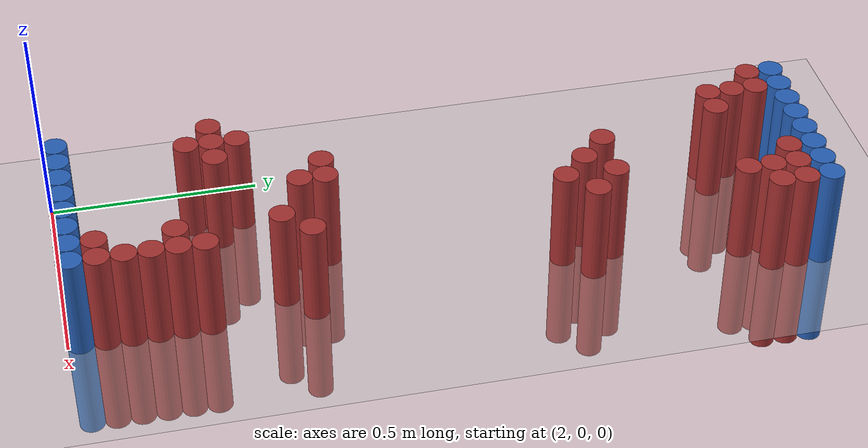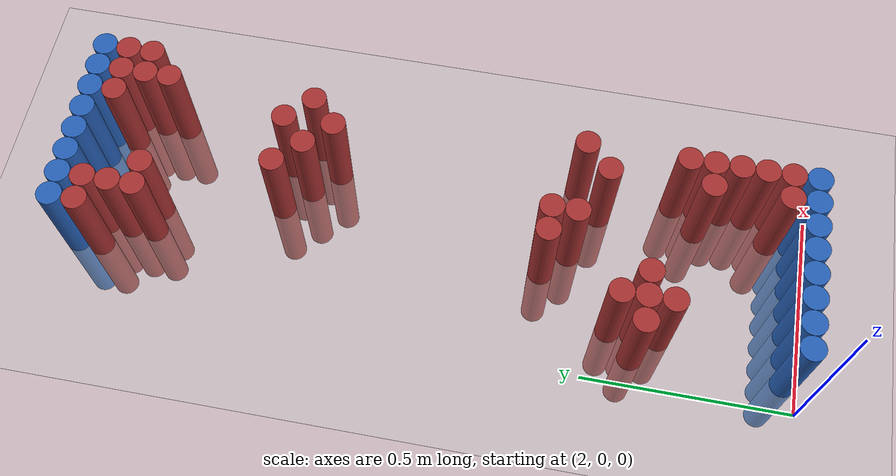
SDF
<sdf version="1.6">
 <world name="default">
  <model name="ground_plane">
   <static>1</static>
   <link name="link">
    <collision name="collision">
     <geometry><plane><normal>0 0 1</normal><size>100 100</size></plane></geometry>
     <surface><friction><ode><mu>100</mu><mu2>50</mu2></ode></friction></surface>
    </collision>
    <visual name="visual">
     <cast_shadows>0</cast_shadows>
     <geometry><plane><normal>0 0 1</normal><size>100 100</size></plane></geometry>
     <material>
      <script><uri>file://media/materials/scripts/gazebo.material</uri><name>Gazebo/Grey</name></script>
     </material>
    </visual>
   </link>
  </model>
  <model name="unit_cylinder_96">
   <static>1</static>
   <pose>2.130000 1.770000 0.000000 0.000000 0.000000 0.000000</pose>
   <link name="link">
    <inertial>
     <mass>1</mass>
     <inertia><ixx>0.145833</ixx><ixy>0</ixy><ixz>0</ixz><iyy>0.145833</iyy><iyz>0</iyz><izz>0.125</izz></inertia>
    </inertial>
    <collision name="collision">
     <geometry><cylinder><radius>0.030000</radius><length>0.5</length></cylinder></geometry>
    </collision>
    <visual name="visual">
     <geometry><cylinder><radius>0.030000</radius><length>0.5</length></cylinder></geometry>
     <material>
      <ambient>0.152000 0.379000 0.720000 1</ambient>
      <diffuse>0.152000 0.379000 0.720000 1</diffuse>
     </material>
     <material>
      <script><name>Gazebo/Grey</name><uri>file://media/materials/scripts/gazebo.material</uri></script>
     </material>
    </visual>
   </link>
  </model>
  <model name="unit_cylinder_97">
   <static>1</static>
   <pose>2.190000 1.770000 0.000000 0.000000 0.000000 0.000000</pose>
   <link name="link">
    <inertial>
     <mass>1</mass>
     <inertia><ixx>0.145833</ixx><ixy>0</ixy><ixz>0</ixz><iyy>0.145833</iyy><iyz>0</iyz><izz>0.125</izz></inertia>
    </inertial>
    <collision name="collision">
     <geometry><cylinder><radius>0.030000</radius><length>0.5</length></cylinder></geometry>
    </collision>
    <visual name="visual">
     <geometry><cylinder><radius>0.030000</radius><length>0.5</length></cylinder></geometry>
     <material>
      <ambient>0.152000 0.379000 0.720000 1</ambient>
      <diffuse>0.152000 0.379000 0.720000 1</diffuse>
     </material>
     <material>
      <script><name>Gazebo/Grey</name><uri>file://media/materials/scripts/gazebo.material</uri></script>
     </material>
    </visual>
   </link>
  </model>
  <model name="unit_cylinder_98">
   <static>1</static>
   <pose>2.250000 1.770000 0.000000 0.000000 0.000000 0.000000</pose>
   <link name="link">
    <inertial>
     <mass>1</mass>
     <inertia><ixx>0.145833</ixx><ixy>0</ixy><ixz>0</ixz><iyy>0.145833</iyy><iyz>0</iyz><izz>0.125</izz></inertia>
    </inertial>
    <collision name="collision">
     <geometry><cylinder><radius>0.030000</radius><length>0.5</length></cylinder></geometry>
    </collision>
    <visual name="visual">
     <geometry><cylinder><radius>0.030000</radius><length>0.5</length></cylinder></geometry>
     <material>
      <ambient>0.152000 0.379000 0.720000 1</ambient>
      <diffuse>0.152000 0.379000 0.720000 1</diffuse>
     </material>
     <material>
      <script><name>Gazebo/Grey</name><uri>file://media/materials/scripts/gazebo.material</uri></script>
     </material>
    </visual>
   </link>
  </model>
  <model name="unit_cylinder_99">
   <static>1</static>
   <pose>2.310000 1.770000 0.000000 0.000000 0.000000 0.000000</pose>
   <link name="link">
    <inertial>
     <mass>1</mass>
     <inertia><ixx>0.145833</ixx><ixy>0</ixy><ixz>0</ixz><iyy>0.145833</iyy><iyz>0</iyz><izz>0.125</izz></inertia>
    </inertial>
    <collision name="collision">
     <geometry><cylinder><radius>0.030000</radius><length>0.5</length></cylinder></geometry>
    </collision>
    <visual name="visual">
     <geometry><cylinder><radius>0.030000</radius><length>0.5</length></cylinder></geometry>
     <material>
      <ambient>0.152000 0.379000 0.720000 1</ambient>
      <diffuse>0.152000 0.379000 0.720000 1</diffuse>
     </material>
     <material>
      <script><name>Gazebo/Grey</name><uri>file://media/materials/scripts/gazebo.material</uri></script>
     </material>
    </visual>
   </link>
  </model>
  <model name="unit_cylinder_100">
   <static>1</static>
   <pose>2.370000 1.770000 0.000000 0.000000 0.000000 0.000000</pose>
   <link name="link">
    <inertial>
     <mass>1</mass>
     <inertia><ixx>0.145833</ixx><ixy>0</ixy><ixz>0</ixz><iyy>0.145833</iyy><iyz>0</iyz><izz>0.125</izz></inertia>
    </inertial>
    <collision name="collision">
     <geometry><cylinder><radius>0.030000</radius><length>0.5</length></cylinder></geometry>
    </collision>
    <visual name="visual">
     <geometry><cylinder><radius>0.030000</radius><length>0.5</length></cylinder></geometry>
     <material>
      <ambient>0.152000 0.379000 0.720000 1</ambient>
      <diffuse>0.152000 0.379000 0.720000 1</diffuse>
     </material>
     <material>
      <script><name>Gazebo/Grey</name><uri>file://media/materials/scripts/gazebo.material</uri></script>
     </material>
    </visual>
   </link>
  </model>
  <model name="unit_cylinder_101">
   <static>1</static>
   <pose>2.430000 1.770000 0.000000 0.000000 0.000000 0.000000</pose>
   <link name="link">
    <inertial>
     <mass>1</mass>
     <inertia><ixx>0.145833</ixx><ixy>0</ixy><ixz>0</ixz><iyy>0.145833</iyy><iyz>0</iyz><izz>0.125</izz></inertia>
    </inertial>
    <collision name="collision">
     <geometry><cylinder><radius>0.030000</radius><length>0.5</length></cylinder></geometry>
    </collision>
    <visual name="visual">
     <geometry><cylinder><radius>0.030000</radius><length>0.5</length></cylinder></geometry>
     <material>
      <ambient>0.152000 0.379000 0.720000 1</ambient>
      <diffuse>0.152000 0.379000 0.720000 1</diffuse>
     </material>
     <material>
      <script><name>Gazebo/Grey</name><uri>file://media/materials/scripts/gazebo.material</uri></script>
     </material>
    </visual>
   </link>
  </model>
  <model name="unit_cylinder_102">
   <static>1</static>
   <pose>2.490000 1.770000 0.000000 0.000000 0.000000 0.000000</pose>
   <link name="link">
    <inertial>
     <mass>1</mass>
     <inertia><ixx>0.145833</ixx><ixy>0</ixy><ixz>0</ixz><iyy>0.145833</iyy><iyz>0</iyz><izz>0.125</izz></inertia>
    </inertial>
    <collision name="collision">
     <geometry><cylinder><radius>0.030000</radius><length>0.5</length></cylinder></geometry>
    </collision>
    <visual name="visual">
     <geometry><cylinder><radius>0.030000</radius><length>0.5</length></cylinder></geometry>
     <material>
      <ambient>0.152000 0.379000 0.720000 1</ambient>
      <diffuse>0.152000 0.379000 0.720000 1</diffuse>
     </material>
     <material>
      <script><name>Gazebo/Grey</name><uri>file://media/materials/scripts/gazebo.material</uri></script>
     </material>
    </visual>
   </link>
  </model>
  <model name="unit_cylinder_103">
   <static>1</static>
   <pose>2.550000 1.770000 0.000000 0.000000 0.000000 0.000000</pose>
   <link name="link">
    <inertial>
     <mass>1</mass>
     <inertia><ixx>0.145833</ixx><ixy>0</ixy><ixz>0</ixz><iyy>0.145833</iyy><iyz>0</iyz><izz>0.125</izz></inertia>
    </inertial>
    <collision name="collision">
     <geometry><cylinder><radius>0.030000</radius><length>0.5</length></cylinder></geometry>
    </collision>
    <visual name="visual">
     <geometry><cylinder><radius>0.030000</radius><length>0.5</length></cylinder></geometry>
     <material>
      <ambient>0.152000 0.379000 0.720000 1</ambient>
      <diffuse>0.152000 0.379000 0.720000 1</diffuse>
     </material>
     <material>
      <script><name>Gazebo/Grey</name><uri>file://media/materials/scripts/gazebo.material</uri></script>
     </material>
    </visual>
   </link>
  </model>
  <model name="unit_cylinder_126">
   <static>1</static>
   <pose>2.130000 1.710000 0.000000 0.000000 0.000000 0.000000</pose>
   <link name="link">
    <inertial>
     <mass>1</mass>
     <inertia><ixx>0.145833</ixx><ixy>0</ixy><ixz>0</ixz><iyy>0.145833</iyy><iyz>0</iyz><izz>0.125</izz></inertia>
    </inertial>
    <collision name="collision">
     <geometry><cylinder><radius>0.030000</radius><length>0.5</length></cylinder></geometry>
    </collision>
    <visual name="visual">
     <geometry><cylinder><radius>0.030000</radius><length>0.5</length></cylinder></geometry>
     <material>
      <ambient>0.648000 0.192000 0.192000 1</ambient>
      <diffuse>0.648000 0.192000 0.192000 1</diffuse>
     </material>
     <material>
      <script><name>Gazebo/Grey</name><uri>file://media/materials/scripts/gazebo.material</uri></script>
     </material>
    </visual>
   </link>
  </model>
  <model name="unit_cylinder_127">
   <static>1</static>
   <pose>2.190000 1.710000 0.000000 0.000000 0.000000 0.000000</pose>
   <link name="link">
    <inertial>
     <mass>1</mass>
     <inertia><ixx>0.145833</ixx><ixy>0</ixy><ixz>0</ixz><iyy>0.145833</iyy><iyz>0</iyz><izz>0.125</izz></inertia>
    </inertial>
    <collision name="collision">
     <geometry><cylinder><radius>0.030000</radius><length>0.5</length></cylinder></geometry>
    </collision>
    <visual name="visual">
     <geometry><cylinder><radius>0.030000</radius><length>0.5</length></cylinder></geometry>
     <material>
      <ambient>0.648000 0.192000 0.192000 1</ambient>
      <diffuse>0.648000 0.192000 0.192000 1</diffuse>
     </material>
     <material>
      <script><name>Gazebo/Grey</name><uri>file://media/materials/scripts/gazebo.material</uri></script>
     </material>
    </visual>
   </link>
  </model>
  <model name="unit_cylinder_128">
   <static>1</static>
   <pose>2.430000 1.710000 0.000000 0.000000 0.000000 0.000000</pose>
   <link name="link">
    <inertial>
     <mass>1</mass>
     <inertia><ixx>0.145833</ixx><ixy>0</ixy><ixz>0</ixz><iyy>0.145833</iyy><iyz>0</iyz><izz>0.125</izz></inertia>
    </inertial>
    <collision name="collision">
     <geometry><cylinder><radius>0.030000</radius><length>0.5</length></cylinder></geometry>
    </collision>
    <visual name="visual">
     <geometry><cylinder><radius>0.030000</radius><length>0.5</length></cylinder></geometry>
     <material>
      <ambient>0.648000 0.192000 0.192000 1</ambient>
      <diffuse>0.648000 0.192000 0.192000 1</diffuse>
     </material>
     <material>
      <script><name>Gazebo/Grey</name><uri>file://media/materials/scripts/gazebo.material</uri></script>
     </material>
    </visual>
   </link>
  </model>
  <model name="unit_cylinder_129">
   <static>1</static>
   <pose>2.490000 1.710000 0.000000 0.000000 0.000000 0.000000</pose>
   <link name="link">
    <inertial>
     <mass>1</mass>
     <inertia><ixx>0.145833</ixx><ixy>0</ixy><ixz>0</ixz><iyy>0.145833</iyy><iyz>0</iyz><izz>0.125</izz></inertia>
    </inertial>
    <collision name="collision">
     <geometry><cylinder><radius>0.030000</radius><length>0.5</length></cylinder></geometry>
    </collision>
    <visual name="visual">
     <geometry><cylinder><radius>0.030000</radius><length>0.5</length></cylinder></geometry>
     <material>
      <ambient>0.648000 0.192000 0.192000 1</ambient>
      <diffuse>0.648000 0.192000 0.192000 1</diffuse>
     </material>
     <material>
      <script><name>Gazebo/Grey</name><uri>file://media/materials/scripts/gazebo.material</uri></script>
     </material>
    </visual>
   </link>
  </model>
  <model name="unit_cylinder_130">
   <static>1</static>
   <pose>2.550000 1.710000 0.000000 0.000000 0.000000 0.000000</pose>
   <link name="link">
    <inertial>
     <mass>1</mass>
     <inertia><ixx>0.145833</ixx><ixy>0</ixy><ixz>0</ixz><iyy>0.145833</iyy><iyz>0</iyz><izz>0.125</izz></inertia>
    </inertial>
    <collision name="collision">
     <geometry><cylinder><radius>0.030000</radius><length>0.5</length></cylinder></geometry>
    </collision>
    <visual name="visual">
     <geometry><cylinder><radius>0.030000</radius><length>0.5</length></cylinder></geometry>
     <material>
      <ambient>0.648000 0.192000 0.192000 1</ambient>
      <diffuse>0.648000 0.192000 0.192000 1</diffuse>
     </material>
     <material>
      <script><name>Gazebo/Grey</name><uri>file://media/materials/scripts/gazebo.material</uri></script>
     </material>
    </visual>
   </link>
  </model>
  <model name="unit_cylinder_144">
   <static>1</static>
   <pose>2.190000 1.650000 0.000000 0.000000 0.000000 0.000000</pose>
   <link name="link">
    <inertial>
     <mass>1</mass>
     <inertia><ixx>0.145833</ixx><ixy>0</ixy><ixz>0</ixz><iyy>0.145833</iyy><iyz>0</iyz><izz>0.125</izz></inertia>
    </inertial>
    <collision name="collision">
     <geometry><cylinder><radius>0.030000</radius><length>0.5</length></cylinder></geometry>
    </collision>
    <visual name="visual">
     <geometry><cylinder><radius>0.030000</radius><length>0.5</length></cylinder></geometry>
     <material>
      <ambient>0.648000 0.192000 0.192000 1</ambient>
      <diffuse>0.648000 0.192000 0.192000 1</diffuse>
     </material>
     <material>
      <script><name>Gazebo/Grey</name><uri>file://media/materials/scripts/gazebo.material</uri></script>
     </material>
    </visual>
   </link>
  </model>
  <model name="unit_cylinder_145">
   <static>1</static>
   <pose>2.490000 1.650000 0.000000 0.000000 0.000000 0.000000</pose>
   <link name="link">
    <inertial>
     <mass>1</mass>
     <inertia><ixx>0.145833</ixx><ixy>0</ixy><ixz>0</ixz><iyy>0.145833</iyy><iyz>0</iyz><izz>0.125</izz></inertia>
    </inertial>
    <collision name="collision">
     <geometry><cylinder><radius>0.030000</radius><length>0.5</length></cylinder></geometry>
    </collision>
    <visual name="visual">
     <geometry><cylinder><radius>0.030000</radius><length>0.5</length></cylinder></geometry>
     <material>
      <ambient>0.648000 0.192000 0.192000 1</ambient>
      <diffuse>0.648000 0.192000 0.192000 1</diffuse>
     </material>
     <material>
      <script><name>Gazebo/Grey</name><uri>file://media/materials/scripts/gazebo.material</uri></script>
     </material>
    </visual>
   </link>
  </model>
  <model name="unit_cylinder_146">
   <static>1</static>
   <pose>2.550000 1.650000 0.000000 0.000000 0.000000 0.000000</pose>
   <link name="link">
    <inertial>
     <mass>1</mass>
     <inertia><ixx>0.145833</ixx><ixy>0</ixy><ixz>0</ixz><iyy>0.145833</iyy><iyz>0</iyz><izz>0.125</izz></inertia>
    </inertial>
    <collision name="collision">
     <geometry><cylinder><radius>0.030000</radius><length>0.5</length></cylinder></geometry>
    </collision>
    <visual name="visual">
     <geometry><cylinder><radius>0.030000</radius><length>0.5</length></cylinder></geometry>
     <material>
      <ambient>0.648000 0.192000 0.192000 1</ambient>
      <diffuse>0.648000 0.192000 0.192000 1</diffuse>
     </material>
     <material>
      <script><name>Gazebo/Grey</name><uri>file://media/materials/scripts/gazebo.material</uri></script>
     </material>
    </visual>
   </link>
  </model>
  <model name="unit_cylinder_151">
   <static>1</static>
   <pose>2.190000 1.590000 0.000000 0.000000 0.000000 0.000000</pose>
   <link name="link">
    <inertial>
     <mass>1</mass>
     <inertia><ixx>0.145833</ixx><ixy>0</ixy><ixz>0</ixz><iyy>0.145833</iyy><iyz>0</iyz><izz>0.125</izz></inertia>
    </inertial>
    <collision name="collision">
     <geometry><cylinder><radius>0.030000</radius><length>0.5</length></cylinder></geometry>
    </collision>
    <visual name="visual">
     <geometry><cylinder><radius>0.030000</radius><length>0.5</length></cylinder></geometry>
     <material>
      <ambient>0.648000 0.192000 0.192000 1</ambient>
      <diffuse>0.648000 0.192000 0.192000 1</diffuse>
     </material>
     <material>
      <script><name>Gazebo/Grey</name><uri>file://media/materials/scripts/gazebo.material</uri></script>
     </material>
    </visual>
   </link>
  </model>
  <model name="unit_cylinder_152">
   <static>1</static>
   <pose>2.250000 1.590000 0.000000 0.000000 0.000000 0.000000</pose>
   <link name="link">
    <inertial>
     <mass>1</mass>
     <inertia><ixx>0.145833</ixx><ixy>0</ixy><ixz>0</ixz><iyy>0.145833</iyy><iyz>0</iyz><izz>0.125</izz></inertia>
    </inertial>
    <collision name="collision">
     <geometry><cylinder><radius>0.030000</radius><length>0.5</length></cylinder></geometry>
    </collision>
    <visual name="visual">
     <geometry><cylinder><radius>0.030000</radius><length>0.5</length></cylinder></geometry>
     <material>
      <ambient>0.648000 0.192000 0.192000 1</ambient>
      <diffuse>0.648000 0.192000 0.192000 1</diffuse>
     </material>
     <material>
      <script><name>Gazebo/Grey</name><uri>file://media/materials/scripts/gazebo.material</uri></script>
     </material>
    </visual>
   </link>
  </model>
  <model name="unit_cylinder_153">
   <static>1</static>
   <pose>2.490000 1.590000 0.000000 0.000000 0.000000 0.000000</pose>
   <link name="link">
    <inertial>
     <mass>1</mass>
     <inertia><ixx>0.145833</ixx><ixy>0</ixy><ixz>0</ixz><iyy>0.145833</iyy><iyz>0</iyz><izz>0.125</izz></inertia>
    </inertial>
    <collision name="collision">
     <geometry><cylinder><radius>0.030000</radius><length>0.5</length></cylinder></geometry>
    </collision>
    <visual name="visual">
     <geometry><cylinder><radius>0.030000</radius><length>0.5</length></cylinder></geometry>
     <material>
      <ambient>0.648000 0.192000 0.192000 1</ambient>
      <diffuse>0.648000 0.192000 0.192000 1</diffuse>
     </material>
     <material>
      <script><name>Gazebo/Grey</name><uri>file://media/materials/scripts/gazebo.material</uri></script>
     </material>
    </visual>
   </link>
  </model>
  <model name="unit_cylinder_158">
   <static>1</static>
   <pose>2.310000 1.290000 0.000000 0.000000 0.000000 0.000000</pose>
   <link name="link">
    <inertial>
     <mass>1</mass>
     <inertia><ixx>0.145833</ixx><ixy>0</ixy><ixz>0</ixz><iyy>0.145833</iyy><iyz>0</iyz><izz>0.125</izz></inertia>
    </inertial>
    <collision name="collision">
     <geometry><cylinder><radius>0.030000</radius><length>0.5</length></cylinder></geometry>
    </collision>
    <visual name="visual">
     <geometry><cylinder><radius>0.030000</radius><length>0.5</length></cylinder></geometry>
     <material>
      <ambient>0.648000 0.192000 0.192000 1</ambient>
      <diffuse>0.648000 0.192000 0.192000 1</diffuse>
     </material>
     <material>
      <script><name>Gazebo/Grey</name><uri>file://media/materials/scripts/gazebo.material</uri></script>
     </material>
    </visual>
   </link>
  </model>
  <model name="unit_cylinder_159">
   <static>1</static>
   <pose>2.430000 1.290000 0.000000 0.000000 0.000000 0.000000</pose>
   <link name="link">
    <inertial>
     <mass>1</mass>
     <inertia><ixx>0.145833</ixx><ixy>0</ixy><ixz>0</ixz><iyy>0.145833</iyy><iyz>0</iyz><izz>0.125</izz></inertia>
    </inertial>
    <collision name="collision">
     <geometry><cylinder><radius>0.030000</radius><length>0.5</length></cylinder></geometry>
    </collision>
    <visual name="visual">
     <geometry><cylinder><radius>0.030000</radius><length>0.5</length></cylinder></geometry>
     <material>
      <ambient>0.648000 0.192000 0.192000 1</ambient>
      <diffuse>0.648000 0.192000 0.192000 1</diffuse>
     </material>
     <material>
      <script><name>Gazebo/Grey</name><uri>file://media/materials/scripts/gazebo.material</uri></script>
     </material>
    </visual>
   </link>
  </model>
  <model name="unit_cylinder_160">
   <static>1</static>
   <pose>2.370000 1.230000 0.000000 0.000000 0.000000 0.000000</pose>
   <link name="link">
    <inertial>
     <mass>1</mass>
     <inertia><ixx>0.145833</ixx><ixy>0</ixy><ixz>0</ixz><iyy>0.145833</iyy><iyz>0</iyz><izz>0.125</izz></inertia>
    </inertial>
    <collision name="collision">
     <geometry><cylinder><radius>0.030000</radius><length>0.5</length></cylinder></geometry>
    </collision>
    <visual name="visual">
     <geometry><cylinder><radius>0.030000</radius><length>0.5</length></cylinder></geometry>
     <material>
      <ambient>0.648000 0.192000 0.192000 1</ambient>
      <diffuse>0.648000 0.192000 0.192000 1</diffuse>
     </material>
     <material>
      <script><name>Gazebo/Grey</name><uri>file://media/materials/scripts/gazebo.material</uri></script>
     </material>
    </visual>
   </link>
  </model>
  <model name="unit_cylinder_161">
   <static>1</static>
   <pose>2.490000 1.230000 0.000000 0.000000 0.000000 0.000000</pose>
   <link name="link">
    <inertial>
     <mass>1</mass>
     <inertia><ixx>0.145833</ixx><ixy>0</ixy><ixz>0</ixz><iyy>0.145833</iyy><iyz>0</iyz><izz>0.125</izz></inertia>
    </inertial>
    <collision name="collision">
     <geometry><cylinder><radius>0.030000</radius><length>0.5</length></cylinder></geometry>
    </collision>
    <visual name="visual">
     <geometry><cylinder><radius>0.030000</radius><length>0.5</length></cylinder></geometry>
     <material>
      <ambient>0.648000 0.192000 0.192000 1</ambient>
      <diffuse>0.648000 0.192000 0.192000 1</diffuse>
     </material>
     <material>
      <script><name>Gazebo/Grey</name><uri>file://media/materials/scripts/gazebo.material</uri></script>
     </material>
    </visual>
   </link>
  </model>
  <model name="unit_cylinder_162">
   <static>1</static>
   <pose>2.430000 1.170000 0.000000 0.000000 0.000000 0.000000</pose>
   <link name="link">
    <inertial>
     <mass>1</mass>
     <inertia><ixx>0.145833</ixx><ixy>0</ixy><ixz>0</ixz><iyy>0.145833</iyy><iyz>0</iyz><izz>0.125</izz></inertia>
    </inertial>
    <collision name="collision">
     <geometry><cylinder><radius>0.030000</radius><length>0.5</length></cylinder></geometry>
    </collision>
    <visual name="visual">
     <geometry><cylinder><radius>0.030000</radius><length>0.5</length></cylinder></geometry>
     <material>
      <ambient>0.648000 0.192000 0.192000 1</ambient>
      <diffuse>0.648000 0.192000 0.192000 1</diffuse>
     </material>
     <material>
      <script><name>Gazebo/Grey</name><uri>file://media/materials/scripts/gazebo.material</uri></script>
     </material>
    </visual>
   </link>
  </model>
  <model name="unit_cylinder_177">
   <static>1</static>
   <pose>2.250000 0.630000 0.000000 0.000000 0.000000 0.000000</pose>
   <link name="link">
    <inertial>
     <mass>1</mass>
     <inertia><ixx>0.145833</ixx><ixy>0</ixy><ixz>0</ixz><iyy>0.145833</iyy><iyz>0</iyz><izz>0.125</izz></inertia>
    </inertial>
    <collision name="collision">
     <geometry><cylinder><radius>0.030000</radius><length>0.5</length></cylinder></geometry>
    </collision>
    <visual name="visual">
     <geometry><cylinder><radius>0.030000</radius><length>0.5</length></cylinder></geometry>
     <material>
      <ambient>0.648000 0.192000 0.192000 1</ambient>
      <diffuse>0.648000 0.192000 0.192000 1</diffuse>
     </material>
     <material>
      <script><name>Gazebo/Grey</name><uri>file://media/materials/scripts/gazebo.material</uri></script>
     </material>
    </visual>
   </link>
  </model>
  <model name="unit_cylinder_178">
   <static>1</static>
   <pose>2.310000 0.630000 0.000000 0.000000 0.000000 0.000000</pose>
   <link name="link">
    <inertial>
     <mass>1</mass>
     <inertia><ixx>0.145833</ixx><ixy>0</ixy><ixz>0</ixz><iyy>0.145833</iyy><iyz>0</iyz><izz>0.125</izz></inertia>
    </inertial>
    <collision name="collision">
     <geometry><cylinder><radius>0.030000</radius><length>0.5</length></cylinder></geometry>
    </collision>
    <visual name="visual">
     <geometry><cylinder><radius>0.030000</radius><length>0.5</length></cylinder></geometry>
     <material>
      <ambient>0.648000 0.192000 0.192000 1</ambient>
      <diffuse>0.648000 0.192000 0.192000 1</diffuse>
     </material>
     <material>
      <script><name>Gazebo/Grey</name><uri>file://media/materials/scripts/gazebo.material</uri></script>
     </material>
    </visual>
   </link>
  </model>
  <model name="unit_cylinder_180">
   <static>1</static>
   <pose>2.310000 0.570000 0.000000 0.000000 0.000000 0.000000</pose>
   <link name="link">
    <inertial>
     <mass>1</mass>
     <inertia><ixx>0.145833</ixx><ixy>0</ixy><ixz>0</ixz><iyy>0.145833</iyy><iyz>0</iyz><izz>0.125</izz></inertia>
    </inertial>
    <collision name="collision">
     <geometry><cylinder><radius>0.030000</radius><length>0.5</length></cylinder></geometry>
    </collision>
    <visual name="visual">
     <geometry><cylinder><radius>0.030000</radius><length>0.5</length></cylinder></geometry>
     <material>
      <ambient>0.648000 0.192000 0.192000 1</ambient>
      <diffuse>0.648000 0.192000 0.192000 1</diffuse>
     </material>
     <material>
      <script><name>Gazebo/Grey</name><uri>file://media/materials/scripts/gazebo.material</uri></script>
     </material>
    </visual>
   </link>
  </model>
  <model name="unit_cylinder_181">
   <static>1</static>
   <pose>2.490000 0.570000 0.000000 0.000000 0.000000 0.000000</pose>
   <link name="link">
    <inertial>
     <mass>1</mass>
     <inertia><ixx>0.145833</ixx><ixy>0</ixy><ixz>0</ixz><iyy>0.145833</iyy><iyz>0</iyz><izz>0.125</izz></inertia>
    </inertial>
    <collision name="collision">
     <geometry><cylinder><radius>0.030000</radius><length>0.5</length></cylinder></geometry>
    </collision>
    <visual name="visual">
     <geometry><cylinder><radius>0.030000</radius><length>0.5</length></cylinder></geometry>
     <material>
      <ambient>0.648000 0.192000 0.192000 1</ambient>
      <diffuse>0.648000 0.192000 0.192000 1</diffuse>
     </material>
     <material>
      <script><name>Gazebo/Grey</name><uri>file://media/materials/scripts/gazebo.material</uri></script>
     </material>
    </visual>
   </link>
  </model>
  <model name="unit_cylinder_182">
   <static>1</static>
   <pose>2.430000 0.510000 0.000000 0.000000 0.000000 0.000000</pose>
   <link name="link">
    <inertial>
     <mass>1</mass>
     <inertia><ixx>0.145833</ixx><ixy>0</ixy><ixz>0</ixz><iyy>0.145833</iyy><iyz>0</iyz><izz>0.125</izz></inertia>
    </inertial>
    <collision name="collision">
     <geometry><cylinder><radius>0.030000</radius><length>0.5</length></cylinder></geometry>
    </collision>
    <visual name="visual">
     <geometry><cylinder><radius>0.030000</radius><length>0.5</length></cylinder></geometry>
     <material>
      <ambient>0.648000 0.192000 0.192000 1</ambient>
      <diffuse>0.648000 0.192000 0.192000 1</diffuse>
     </material>
     <material>
      <script><name>Gazebo/Grey</name><uri>file://media/materials/scripts/gazebo.material</uri></script>
     </material>
    </visual>
   </link>
  </model>
  <model name="unit_cylinder_184">
   <static>1</static>
   <pose>2.130000 0.450000 0.000000 0.000000 0.000000 0.000000</pose>
   <link name="link">
    <inertial>
     <mass>1</mass>
     <inertia><ixx>0.145833</ixx><ixy>0</ixy><ixz>0</ixz><iyy>0.145833</iyy><iyz>0</iyz><izz>0.125</izz></inertia>
    </inertial>
    <collision name="collision">
     <geometry><cylinder><radius>0.030000</radius><length>0.5</length></cylinder></geometry>
    </collision>
    <visual name="visual">
     <geometry><cylinder><radius>0.030000</radius><length>0.5</length></cylinder></geometry>
     <material>
      <ambient>0.648000 0.192000 0.192000 1</ambient>
      <diffuse>0.648000 0.192000 0.192000 1</diffuse>
     </material>
     <material>
      <script><name>Gazebo/Grey</name><uri>file://media/materials/scripts/gazebo.material</uri></script>
     </material>
    </visual>
   </link>
  </model>
  <model name="unit_cylinder_186">
   <static>1</static>
   <pose>2.070000 0.390000 0.000000 0.000000 0.000000 0.000000</pose>
   <link name="link">
    <inertial>
     <mass>1</mass>
     <inertia><ixx>0.145833</ixx><ixy>0</ixy><ixz>0</ixz><iyy>0.145833</iyy><iyz>0</iyz><izz>0.125</izz></inertia>
    </inertial>
    <collision name="collision">
     <geometry><cylinder><radius>0.030000</radius><length>0.5</length></cylinder></geometry>
    </collision>
    <visual name="visual">
     <geometry><cylinder><radius>0.030000</radius><length>0.5</length></cylinder></geometry>
     <material>
      <ambient>0.648000 0.192000 0.192000 1</ambient>
      <diffuse>0.648000 0.192000 0.192000 1</diffuse>
     </material>
     <material>
      <script><name>Gazebo/Grey</name><uri>file://media/materials/scripts/gazebo.material</uri></script>
     </material>
    </visual>
   </link>
  </model>
  <model name="unit_cylinder_187">
   <static>1</static>
   <pose>2.130000 0.390000 0.000000 0.000000 0.000000 0.000000</pose>
   <link name="link">
    <inertial>
     <mass>1</mass>
     <inertia><ixx>0.145833</ixx><ixy>0</ixy><ixz>0</ixz><iyy>0.145833</iyy><iyz>0</iyz><izz>0.125</izz></inertia>
    </inertial>
    <collision name="collision">
     <geometry><cylinder><radius>0.030000</radius><length>0.5</length></cylinder></geometry>
    </collision>
    <visual name="visual">
     <geometry><cylinder><radius>0.030000</radius><length>0.5</length></cylinder></geometry>
     <material>
      <ambient>0.648000 0.192000 0.192000 1</ambient>
      <diffuse>0.648000 0.192000 0.192000 1</diffuse>
     </material>
     <material>
      <script><name>Gazebo/Grey</name><uri>file://media/materials/scripts/gazebo.material</uri></script>
     </material>
    </visual>
   </link>
  </model>
  <model name="unit_cylinder_188">
   <static>1</static>
   <pose>2.190000 0.390000 0.000000 0.000000 0.000000 0.000000</pose>
   <link name="link">
    <inertial>
     <mass>1</mass>
     <inertia><ixx>0.145833</ixx><ixy>0</ixy><ixz>0</ixz><iyy>0.145833</iyy><iyz>0</iyz><izz>0.125</izz></inertia>
    </inertial>
    <collision name="collision">
     <geometry><cylinder><radius>0.030000</radius><length>0.5</length></cylinder></geometry>
    </collision>
    <visual name="visual">
     <geometry><cylinder><radius>0.030000</radius><length>0.5</length></cylinder></geometry>
     <material>
      <ambient>0.648000 0.192000 0.192000 1</ambient>
      <diffuse>0.648000 0.192000 0.192000 1</diffuse>
     </material>
     <material>
      <script><name>Gazebo/Grey</name><uri>file://media/materials/scripts/gazebo.material</uri></script>
     </material>
    </visual>
   </link>
  </model>
  <model name="unit_cylinder_190">
   <static>1</static>
   <pose>2.130000 0.330000 0.000000 0.000000 0.000000 0.000000</pose>
   <link name="link">
    <inertial>
     <mass>1</mass>
     <inertia><ixx>0.145833</ixx><ixy>0</ixy><ixz>0</ixz><iyy>0.145833</iyy><iyz>0</iyz><izz>0.125</izz></inertia>
    </inertial>
    <collision name="collision">
     <geometry><cylinder><radius>0.030000</radius><length>0.5</length></cylinder></geometry>
    </collision>
    <visual name="visual">
     <geometry><cylinder><radius>0.030000</radius><length>0.5</length></cylinder></geometry>
     <material>
      <ambient>0.648000 0.192000 0.192000 1</ambient>
      <diffuse>0.648000 0.192000 0.192000 1</diffuse>
     </material>
     <material>
      <script><name>Gazebo/Grey</name><uri>file://media/materials/scripts/gazebo.material</uri></script>
     </material>
    </visual>
   </link>
  </model>
  <model name="unit_cylinder_191">
   <static>1</static>
   <pose>2.490000 0.330000 0.000000 0.000000 0.000000 0.000000</pose>
   <link name="link">
    <inertial>
     <mass>1</mass>
     <inertia><ixx>0.145833</ixx><ixy>0</ixy><ixz>0</ixz><iyy>0.145833</iyy><iyz>0</iyz><izz>0.125</izz></inertia>
    </inertial>
    <collision name="collision">
     <geometry><cylinder><radius>0.030000</radius><length>0.5</length></cylinder></geometry>
    </collision>
    <visual name="visual">
     <geometry><cylinder><radius>0.030000</radius><length>0.5</length></cylinder></geometry>
     <material>
      <ambient>0.648000 0.192000 0.192000 1</ambient>
      <diffuse>0.648000 0.192000 0.192000 1</diffuse>
     </material>
     <material>
      <script><name>Gazebo/Grey</name><uri>file://media/materials/scripts/gazebo.material</uri></script>
     </material>
    </visual>
   </link>
  </model>
  <model name="unit_cylinder_195">
   <static>1</static>
   <pose>2.430000 0.270000 0.000000 0.000000 0.000000 0.000000</pose>
   <link name="link">
    <inertial>
     <mass>1</mass>
     <inertia><ixx>0.145833</ixx><ixy>0</ixy><ixz>0</ixz><iyy>0.145833</iyy><iyz>0</iyz><izz>0.125</izz></inertia>
    </inertial>
    <collision name="collision">
     <geometry><cylinder><radius>0.030000</radius><length>0.5</length></cylinder></geometry>
    </collision>
    <visual name="visual">
     <geometry><cylinder><radius>0.030000</radius><length>0.5</length></cylinder></geometry>
     <material>
      <ambient>0.648000 0.192000 0.192000 1</ambient>
      <diffuse>0.648000 0.192000 0.192000 1</diffuse>
     </material>
     <material>
      <script><name>Gazebo/Grey</name><uri>file://media/materials/scripts/gazebo.material</uri></script>
     </material>
    </visual>
   </link>
  </model>
  <model name="unit_cylinder_196">
   <static>1</static>
   <pose>2.490000 0.270000 0.000000 0.000000 0.000000 0.000000</pose>
   <link name="link">
    <inertial>
     <mass>1</mass>
     <inertia><ixx>0.145833</ixx><ixy>0</ixy><ixz>0</ixz><iyy>0.145833</iyy><iyz>0</iyz><izz>0.125</izz></inertia>
    </inertial>
    <collision name="collision">
     <geometry><cylinder><radius>0.030000</radius><length>0.5</length></cylinder></geometry>
    </collision>
    <visual name="visual">
     <geometry><cylinder><radius>0.030000</radius><length>0.5</length></cylinder></geometry>
     <material>
      <ambient>0.648000 0.192000 0.192000 1</ambient>
      <diffuse>0.648000 0.192000 0.192000 1</diffuse>
     </material>
     <material>
      <script><name>Gazebo/Grey</name><uri>file://media/materials/scripts/gazebo.material</uri></script>
     </material>
    </visual>
   </link>
  </model>
  <model name="unit_cylinder_199">
   <static>1</static>
   <pose>2.490000 0.210000 0.000000 0.000000 0.000000 0.000000</pose>
   <link name="link">
    <inertial>
     <mass>1</mass>
     <inertia><ixx>0.145833</ixx><ixy>0</ixy><ixz>0</ixz><iyy>0.145833</iyy><iyz>0</iyz><izz>0.125</izz></inertia>
    </inertial>
    <collision name="collision">
     <geometry><cylinder><radius>0.030000</radius><length>0.5</length></cylinder></geometry>
    </collision>
    <visual name="visual">
     <geometry><cylinder><radius>0.030000</radius><length>0.5</length></cylinder></geometry>
     <material>
      <ambient>0.648000 0.192000 0.192000 1</ambient>
      <diffuse>0.648000 0.192000 0.192000 1</diffuse>
     </material>
     <material>
      <script><name>Gazebo/Grey</name><uri>file://media/materials/scripts/gazebo.material</uri></script>
     </material>
    </visual>
   </link>
  </model>
  <model name="unit_cylinder_200">
   <static>1</static>
   <pose>2.490000 0.150000 0.000000 0.000000 0.000000 0.000000</pose>
   <link name="link">
    <inertial>
     <mass>1</mass>
     <inertia><ixx>0.145833</ixx><ixy>0</ixy><ixz>0</ixz><iyy>0.145833</iyy><iyz>0</iyz><izz>0.125</izz></inertia>
    </inertial>
    <collision name="collision">
     <geometry><cylinder><radius>0.030000</radius><length>0.5</length></cylinder></geometry>
    </collision>
    <visual name="visual">
     <geometry><cylinder><radius>0.030000</radius><length>0.5</length></cylinder></geometry>
     <material>
      <ambient>0.648000 0.192000 0.192000 1</ambient>
      <diffuse>0.648000 0.192000 0.192000 1</diffuse>
     </material>
     <material>
      <script><name>Gazebo/Grey</name><uri>file://media/materials/scripts/gazebo.material</uri></script>
     </material>
    </visual>
   </link>
  </model>
  <model name="unit_cylinder_202">
   <static>1</static>
   <pose>2.430000 0.090000 0.000000 0.000000 0.000000 0.000000</pose>
   <link name="link">
    <inertial>
     <mass>1</mass>
     <inertia><ixx>0.145833</ixx><ixy>0</ixy><ixz>0</ixz><iyy>0.145833</iyy><iyz>0</iyz><izz>0.125</izz></inertia>
    </inertial>
    <collision name="collision">
     <geometry><cylinder><radius>0.030000</radius><length>0.5</length></cylinder></geometry>
    </collision>
    <visual name="visual">
     <geometry><cylinder><radius>0.030000</radius><length>0.5</length></cylinder></geometry>
     <material>
      <ambient>0.648000 0.192000 0.192000 1</ambient>
      <diffuse>0.648000 0.192000 0.192000 1</diffuse>
     </material>
     <material>
      <script><name>Gazebo/Grey</name><uri>file://media/materials/scripts/gazebo.material</uri></script>
     </material>
    </visual>
   </link>
  </model>
  <model name="unit_cylinder_203">
   <static>1</static>
   <pose>2.490000 0.090000 0.000000 0.000000 0.000000 0.000000</pose>
   <link name="link">
    <inertial>
     <mass>1</mass>
     <inertia><ixx>0.145833</ixx><ixy>0</ixy><ixz>0</ixz><iyy>0.145833</iyy><iyz>0</iyz><izz>0.125</izz></inertia>
    </inertial>
    <collision name="collision">
     <geometry><cylinder><radius>0.030000</radius><length>0.5</length></cylinder></geometry>
    </collision>
    <visual name="visual">
     <geometry><cylinder><radius>0.030000</radius><length>0.5</length></cylinder></geometry>
     <material>
      <ambient>0.648000 0.192000 0.192000 1</ambient>
      <diffuse>0.648000 0.192000 0.192000 1</diffuse>
     </material>
     <material>
      <script><name>Gazebo/Grey</name><uri>file://media/materials/scripts/gazebo.material</uri></script>
     </material>
    </visual>
   </link>
  </model>
  <model name="unit_cylinder_216">
   <static>1</static>
   <pose>2.070000 0.030000 0.000000 0.000000 0.000000 0.000000</pose>
   <link name="link">
    <inertial>
     <mass>1</mass>
     <inertia><ixx>0.145833</ixx><ixy>0</ixy><ixz>0</ixz><iyy>0.145833</iyy><iyz>0</iyz><izz>0.125</izz></inertia>
    </inertial>
    <collision name="collision">
     <geometry><cylinder><radius>0.030000</radius><length>0.5</length></cylinder></geometry>
    </collision>
    <visual name="visual">
     <geometry><cylinder><radius>0.030000</radius><length>0.5</length></cylinder></geometry>
     <material>
      <ambient>0.152000 0.379000 0.720000 1</ambient>
      <diffuse>0.152000 0.379000 0.720000 1</diffuse>
     </material>
     <material>
      <script><name>Gazebo/Grey</name><uri>file://media/materials/scripts/gazebo.material</uri></script>
     </material>
    </visual>
   </link>
  </model>
  <model name="unit_cylinder_217">
   <static>1</static>
   <pose>2.130000 0.030000 0.000000 0.000000 0.000000 0.000000</pose>
   <link name="link">
    <inertial>
     <mass>1</mass>
     <inertia><ixx>0.145833</ixx><ixy>0</ixy><ixz>0</ixz><iyy>0.145833</iyy><iyz>0</iyz><izz>0.125</izz></inertia>
    </inertial>
    <collision name="collision">
     <geometry><cylinder><radius>0.030000</radius><length>0.5</length></cylinder></geometry>
    </collision>
    <visual name="visual">
     <geometry><cylinder><radius>0.030000</radius><length>0.5</length></cylinder></geometry>
     <material>
      <ambient>0.152000 0.379000 0.720000 1</ambient>
      <diffuse>0.152000 0.379000 0.720000 1</diffuse>
     </material>
     <material>
      <script><name>Gazebo/Grey</name><uri>file://media/materials/scripts/gazebo.material</uri></script>
     </material>
    </visual>
   </link>
  </model>
  <model name="unit_cylinder_218">
   <static>1</static>
   <pose>2.190000 0.030000 0.000000 0.000000 0.000000 0.000000</pose>
   <link name="link">
    <inertial>
     <mass>1</mass>
     <inertia><ixx>0.145833</ixx><ixy>0</ixy><ixz>0</ixz><iyy>0.145833</iyy><iyz>0</iyz><izz>0.125</izz></inertia>
    </inertial>
    <collision name="collision">
     <geometry><cylinder><radius>0.030000</radius><length>0.5</length></cylinder></geometry>
    </collision>
    <visual name="visual">
     <geometry><cylinder><radius>0.030000</radius><length>0.5</length></cylinder></geometry>
     <material>
      <ambient>0.152000 0.379000 0.720000 1</ambient>
      <diffuse>0.152000 0.379000 0.720000 1</diffuse>
     </material>
     <material>
      <script><name>Gazebo/Grey</name><uri>file://media/materials/scripts/gazebo.material</uri></script>
     </material>
    </visual>
   </link>
  </model>
  <model name="unit_cylinder_219">
   <static>1</static>
   <pose>2.250000 0.030000 0.000000 0.000000 0.000000 0.000000</pose>
   <link name="link">
    <inertial>
     <mass>1</mass>
     <inertia><ixx>0.145833</ixx><ixy>0</ixy><ixz>0</ixz><iyy>0.145833</iyy><iyz>0</iyz><izz>0.125</izz></inertia>
    </inertial>
    <collision name="collision">
     <geometry><cylinder><radius>0.030000</radius><length>0.5</length></cylinder></geometry>
    </collision>
    <visual name="visual">
     <geometry><cylinder><radius>0.030000</radius><length>0.5</length></cylinder></geometry>
     <material>
      <ambient>0.152000 0.379000 0.720000 1</ambient>
      <diffuse>0.152000 0.379000 0.720000 1</diffuse>
     </material>
     <material>
      <script><name>Gazebo/Grey</name><uri>file://media/materials/scripts/gazebo.material</uri></script>
     </material>
    </visual>
   </link>
  </model>
  <model name="unit_cylinder_220">
   <static>1</static>
   <pose>2.310000 0.030000 0.000000 0.000000 0.000000 0.000000</pose>
   <link name="link">
    <inertial>
     <mass>1</mass>
     <inertia><ixx>0.145833</ixx><ixy>0</ixy><ixz>0</ixz><iyy>0.145833</iyy><iyz>0</iyz><izz>0.125</izz></inertia>
    </inertial>
    <collision name="collision">
     <geometry><cylinder><radius>0.030000</radius><length>0.5</length></cylinder></geometry>
    </collision>
    <visual name="visual">
     <geometry><cylinder><radius>0.030000</radius><length>0.5</length></cylinder></geometry>
     <material>
      <ambient>0.152000 0.379000 0.720000 1</ambient>
      <diffuse>0.152000 0.379000 0.720000 1</diffuse>
     </material>
     <material>
      <script><name>Gazebo/Grey</name><uri>file://media/materials/scripts/gazebo.material</uri></script>
     </material>
    </visual>
   </link>
  </model>
  <model name="unit_cylinder_221">
   <static>1</static>
   <pose>2.370000 0.030000 0.000000 0.000000 0.000000 0.000000</pose>
   <link name="link">
    <inertial>
     <mass>1</mass>
     <inertia><ixx>0.145833</ixx><ixy>0</ixy><ixz>0</ixz><iyy>0.145833</iyy><iyz>0</iyz><izz>0.125</izz></inertia>
    </inertial>
    <collision name="collision">
     <geometry><cylinder><radius>0.030000</radius><length>0.5</length></cylinder></geometry>
    </collision>
    <visual name="visual">
     <geometry><cylinder><radius>0.030000</radius><length>0.5</length></cylinder></geometry>
     <material>
      <ambient>0.152000 0.379000 0.720000 1</ambient>
      <diffuse>0.152000 0.379000 0.720000 1</diffuse>
     </material>
     <material>
      <script><name>Gazebo/Grey</name><uri>file://media/materials/scripts/gazebo.material</uri></script>
     </material>
    </visual>
   </link>
  </model>
  <model name="unit_cylinder_222">
   <static>1</static>
   <pose>2.430000 0.030000 0.000000 0.000000 0.000000 0.000000</pose>
   <link name="link">
    <inertial>
     <mass>1</mass>
     <inertia><ixx>0.145833</ixx><ixy>0</ixy><ixz>0</ixz><iyy>0.145833</iyy><iyz>0</iyz><izz>0.125</izz></inertia>
    </inertial>
    <collision name="collision">
     <geometry><cylinder><radius>0.030000</radius><length>0.5</length></cylinder></geometry>
    </collision>
    <visual name="visual">
     <geometry><cylinder><radius>0.030000</radius><length>0.5</length></cylinder></geometry>
     <material>
      <ambient>0.152000 0.379000 0.720000 1</ambient>
      <diffuse>0.152000 0.379000 0.720000 1</diffuse>
     </material>
     <material>
      <script><name>Gazebo/Grey</name><uri>file://media/materials/scripts/gazebo.material</uri></script>
     </material>
    </visual>
   </link>
  </model>
  <model name="unit_cylinder_223">
   <static>1</static>
   <pose>2.490000 0.030000 0.000000 0.000000 0.000000 0.000000</pose>
   <link name="link">
    <inertial>
     <mass>1</mass>
     <inertia><ixx>0.145833</ixx><ixy>0</ixy><ixz>0</ixz><iyy>0.145833</iyy><iyz>0</iyz><izz>0.125</izz></inertia>
    </inertial>
    <collision name="collision">
     <geometry><cylinder><radius>0.030000</radius><length>0.5</length></cylinder></geometry>
    </collision>
    <visual name="visual">
     <geometry><cylinder><radius>0.030000</radius><length>0.5</length></cylinder></geometry>
     <material>
      <ambient>0.152000 0.379000 0.720000 1</ambient>
      <diffuse>0.152000 0.379000 0.720000 1</diffuse>
     </material>
     <material>
      <script><name>Gazebo/Grey</name><uri>file://media/materials/scripts/gazebo.material</uri></script>
     </material>
    </visual>
   </link>
  </model>
 </world>
</sdf>
